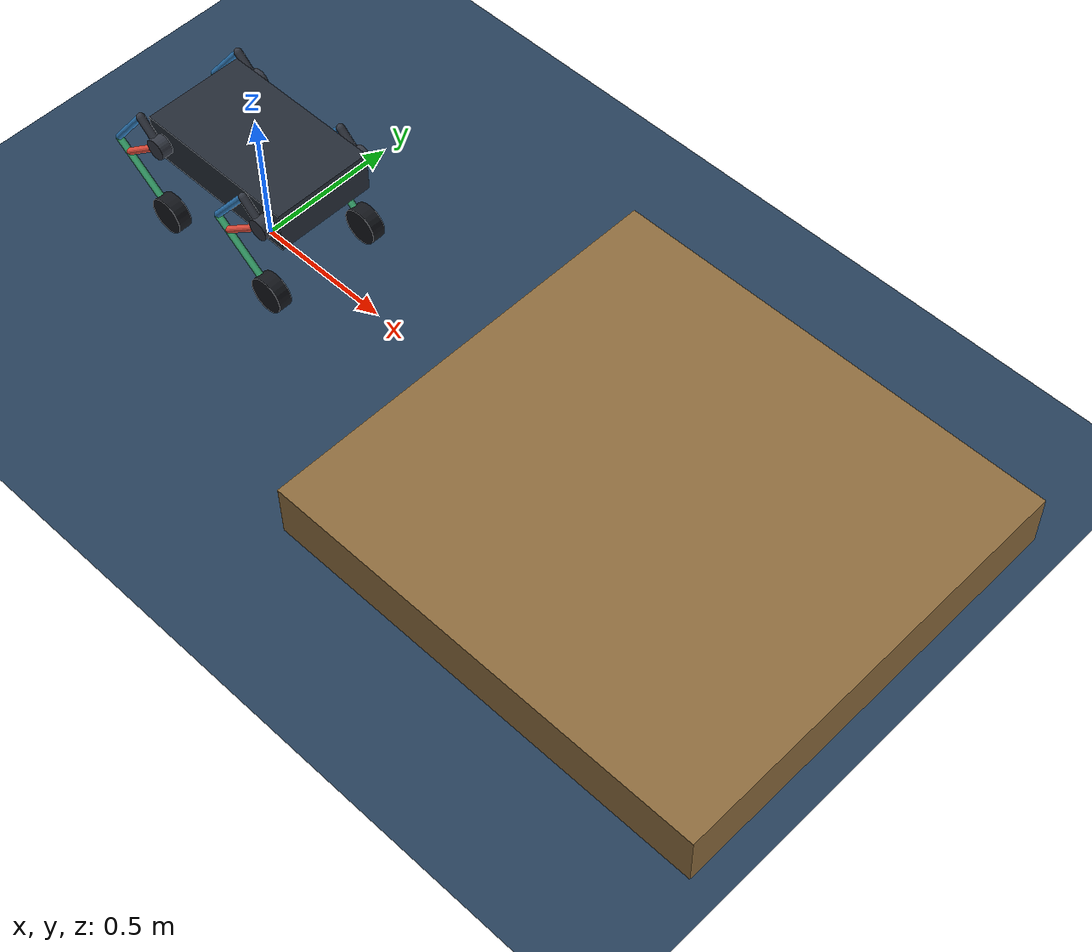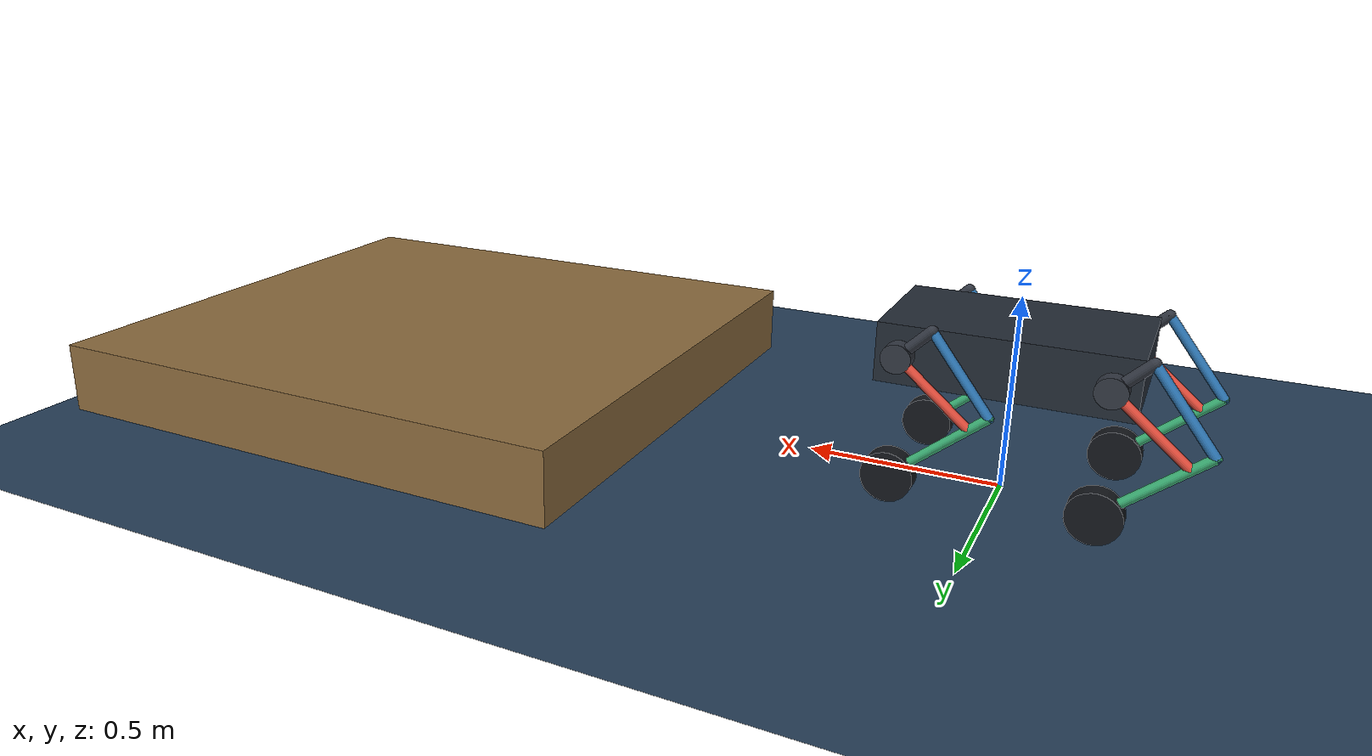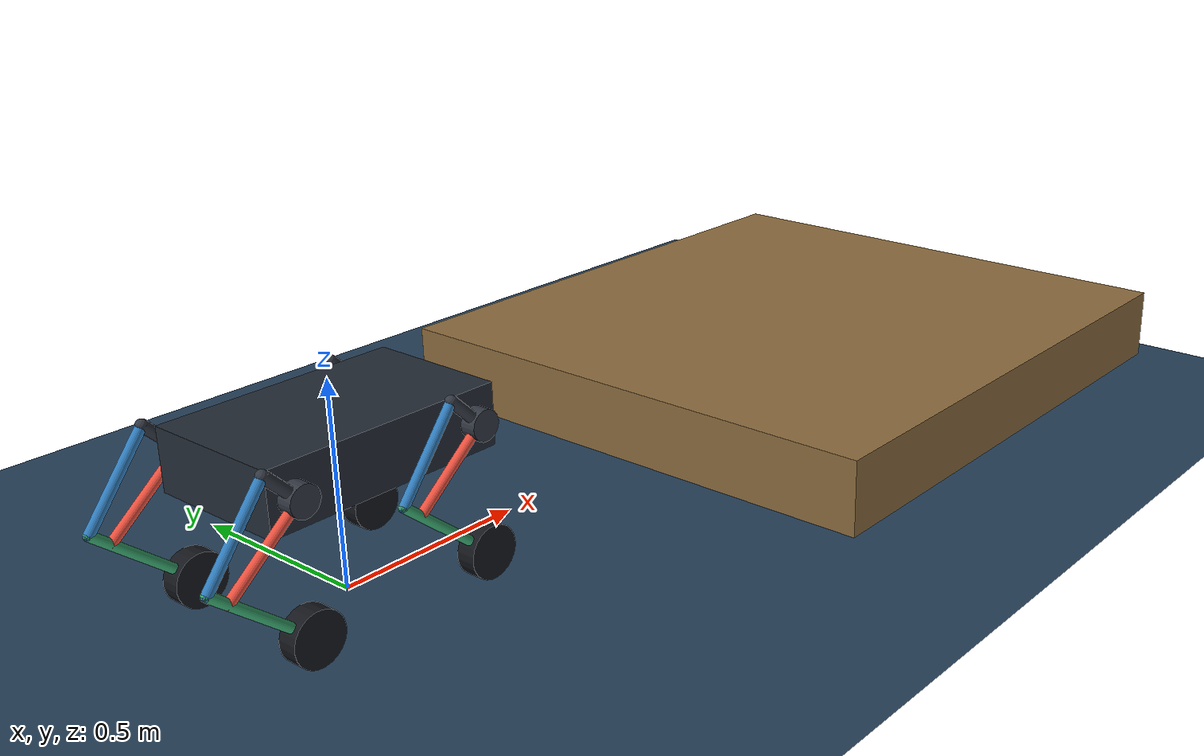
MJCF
<mujoco model="ascento_dog_step">
  <compiler angle="radian" inertiafromgeom="true" balanceinertia="true"/>
  <option timestep="0.001" gravity="0 0 -9.81" integrator="implicitfast"
          iterations="100" tolerance="1e-10"/>
  <statistic center="0.7 0 0.35" extent="1.2"/>

  <visual>
    <global azimuth="135" elevation="-20"/>
    <scale jointlength="0.035" jointwidth="0.008"/>
  </visual>

  <default>
    <joint axis="0 -1 0" damping="0.05" armature="0.001"/>
    <geom type="capsule" size="0.012" density="550" contype="0" conaffinity="0"/>
    <site type="sphere" size="0.008" group="2"/>
  </default>

  <asset>
    <texture name="floor_tex" type="2d" builtin="checker" mark="edge"
             width="512" height="512" rgb1="0.20 0.30 0.40"
             rgb2="0.10 0.20 0.30" markrgb="0.80 0.80 0.80"/>
    <material name="floor_mat" texture="floor_tex" texrepeat="4 4"
              texuniform="true" reflectance="0.15"/>
    <material name="chassis_mat" rgba="0.14 0.17 0.21 1"/>
    <material name="frame_mat" rgba="0.20 0.22 0.26 1"/>
    <material name="driver_mat" rgba="0.91 0.31 0.24 1"/>
    <material name="upper_mat" rgba="0.19 0.49 0.74 1"/>
    <material name="lower_mat" rgba="0.23 0.68 0.45 1"/>
    <material name="wheel_mat" rgba="0.08 0.09 0.11 1"/>
    <material name="step_mat" rgba="0.55 0.42 0.24 1"/>
  </asset>

  <worldbody>
    <light name="key" pos="0 -1.5 1.8" dir="0 0.6 -1"/>
    <!--
      台阶：顶面高 200 mm，立面前缘位于 x = 0.9 m，向 +x 延伸到 x = 2.5 m。
      contype/conaffinity 与地面一致，摩擦同车轮滚动摩擦约定。
    -->
    <geom name="step" type="box" pos="1.7 0 0.10" size="0.8 0.75 0.10"
          material="step_mat" contype="1" conaffinity="1"
          friction="1.5 0.01 0.001"/>
    <camera name="overview" pos="0.6 -2.0 1.0"
            xyaxes="0.9889 -0.1483 0 0.0516 0.3439 0.9376"/>
    <camera name="step_side" pos="0.9 1.8 0.8"
            xyaxes="-1 0 0 0 -0.2922 0.9564"/>
    <geom name="floor" type="plane" pos="0 0 0" size="2.6 1.5 0.05"
          material="floor_mat" contype="1" conaffinity="1"/>

    <!--
      Illustrative chassis: 0.60 x 0.36 x 0.15 m.
      Reference height makes the four nominal-pose wheels tangent to z=0.
    -->
    <body name="chassis" pos="0 0 0.3693091272">
      <freejoint name="floating_base"/>
      <geom name="chassis_box" type="box" size="0.30 0.18 0.075"
            material="chassis_mat"/>
      <site name="imu_site" pos="0 0 0.02" size="0.004" rgba="1 0.8 0 0.5"/>

      <!-- Front-left leg: local analytical +x points toward chassis -x
           (knee bends rearward, toward the travel-opposite side). -->
      <body name="front_left_mount" pos="0.24 0.20 0" quat="0 0 0 1">
        <geom name="front_left_frame_AB" fromto="0 0 0 0.0769968574 0 0.0769968574"
              size="0.014" material="frame_mat"/>
        <geom name="front_left_hip_housing" type="cylinder" pos="0 0 0"
              size="0.037 0.020" quat="0.7071067812 0.7071067812 0 0"
              material="frame_mat"/>
        <site name="front_left_point_A" pos="0 0 0" rgba="1 0.3 0.2 1"/>
        <site name="front_left_point_B" pos="0.0769968574 0 0.0769968574"
              rgba="1 0.8 0.1 1"/>
        <body name="front_left_driver_AD" quat="0.9396926208 0 0.3420201433 0">
          <joint name="front_left_hip_drive" range="-0.4363323130 0.4363323130"/>
          <geom name="front_left_link_AD" fromto="0 0 0 0.238 0 0"
                material="driver_mat"/>
          <site name="front_left_point_D" pos="0.238 0 0" rgba="1 0.3 0.2 1"/>
          <body name="front_left_lower_DCE" pos="0.238 0 0"
                quat="0.7655608359 0 -0.6433635104 0">
            <joint name="front_left_inner_passive" range="-1.2 1.2"/>
            <geom name="front_left_link_DCE" fromto="-0.235 0 0 0.057 0 0"
                  material="lower_mat"/>
            <site name="front_left_point_C_lower" pos="0.057 0 0"
                  rgba="0.9 0.2 0.9 1"/>
            <site name="front_left_point_C" pos="0.057 0 0" rgba="0.9 0.2 0.9 0"/>
            <site name="front_left_point_E" pos="-0.235 0 0" rgba="0.2 1 0.4 1"/>
            <body name="front_left_wheel" pos="-0.235 0 0">
              <joint name="front_left_wheel_spin" axis="0 -1 0" damping="0.01"/>
              <geom name="front_left_wheel_geom" type="cylinder" size="0.065 0.025"
                    quat="0.7071067812 0.7071067812 0 0" material="wheel_mat"
                    contype="1" conaffinity="1" friction="1.0 0.01 0.001"/>
            </body>
          </body>
        </body>
        <body name="front_left_upper_BC" pos="0.0769968574 0 0.0769968574"
              quat="0.8973219461 0 0.4413766249 0">
          <joint name="front_left_pin_passive" range="-1.2 1.2"/>
          <geom name="front_left_link_BC" fromto="0 0 0 0.244 0 0"
                material="upper_mat"/>
          <site name="front_left_point_C_upper" pos="0.244 0 0"
                rgba="0.9 0.2 0.9 0.45"/>
        </body>
      </body>

      <!-- Front-right leg. -->
      <body name="front_right_mount" pos="0.24 -0.20 0" quat="0 0 0 1">
        <geom name="front_right_frame_AB" fromto="0 0 0 0.0769968574 0 0.0769968574"
              size="0.014" material="frame_mat"/>
        <geom name="front_right_hip_housing" type="cylinder" pos="0 0 0"
              size="0.037 0.020" quat="0.7071067812 0.7071067812 0 0"
              material="frame_mat"/>
        <site name="front_right_point_A" pos="0 0 0" rgba="1 0.3 0.2 1"/>
        <site name="front_right_point_B" pos="0.0769968574 0 0.0769968574"
              rgba="1 0.8 0.1 1"/>
        <body name="front_right_driver_AD" quat="0.9396926208 0 0.3420201433 0">
          <joint name="front_right_hip_drive" range="-0.4363323130 0.4363323130"/>
          <geom name="front_right_link_AD" fromto="0 0 0 0.238 0 0"
                material="driver_mat"/>
          <site name="front_right_point_D" pos="0.238 0 0" rgba="1 0.3 0.2 1"/>
          <body name="front_right_lower_DCE" pos="0.238 0 0"
                quat="0.7655608359 0 -0.6433635104 0">
            <joint name="front_right_inner_passive" range="-1.2 1.2"/>
            <geom name="front_right_link_DCE" fromto="-0.235 0 0 0.057 0 0"
                  material="lower_mat"/>
            <site name="front_right_point_C_lower" pos="0.057 0 0"
                  rgba="0.9 0.2 0.9 1"/>
            <site name="front_right_point_C" pos="0.057 0 0" rgba="0.9 0.2 0.9 0"/>
            <site name="front_right_point_E" pos="-0.235 0 0" rgba="0.2 1 0.4 1"/>
            <body name="front_right_wheel" pos="-0.235 0 0">
              <joint name="front_right_wheel_spin" axis="0 -1 0" damping="0.01"/>
              <geom name="front_right_wheel_geom" type="cylinder" size="0.065 0.025"
                    quat="0.7071067812 0.7071067812 0 0" material="wheel_mat"
                    contype="1" conaffinity="1" friction="1.0 0.01 0.001"/>
            </body>
          </body>
        </body>
        <body name="front_right_upper_BC" pos="0.0769968574 0 0.0769968574"
              quat="0.8973219461 0 0.4413766249 0">
          <joint name="front_right_pin_passive" range="-1.2 1.2"/>
          <geom name="front_right_link_BC" fromto="0 0 0 0.244 0 0"
                material="upper_mat"/>
          <site name="front_right_point_C_upper" pos="0.244 0 0"
                rgba="0.9 0.2 0.9 0.45"/>
        </body>
      </body>

      <!-- Rear-left leg: same local +x direction as both front legs. -->
      <body name="rear_left_mount" pos="-0.24 0.20 0" quat="0 0 0 1">
        <geom name="rear_left_frame_AB" fromto="0 0 0 0.0769968574 0 0.0769968574"
              size="0.014" material="frame_mat"/>
        <geom name="rear_left_hip_housing" type="cylinder" pos="0 0 0"
              size="0.037 0.020" quat="0.7071067812 0.7071067812 0 0"
              material="frame_mat"/>
        <site name="rear_left_point_A" pos="0 0 0" rgba="1 0.3 0.2 1"/>
        <site name="rear_left_point_B" pos="0.0769968574 0 0.0769968574"
              rgba="1 0.8 0.1 1"/>
        <body name="rear_left_driver_AD" quat="0.9396926208 0 0.3420201433 0">
          <joint name="rear_left_hip_drive" range="-0.4363323130 0.4363323130"/>
          <geom name="rear_left_link_AD" fromto="0 0 0 0.238 0 0"
                material="driver_mat"/>
          <site name="rear_left_point_D" pos="0.238 0 0" rgba="1 0.3 0.2 1"/>
          <body name="rear_left_lower_DCE" pos="0.238 0 0"
                quat="0.7655608359 0 -0.6433635104 0">
            <joint name="rear_left_inner_passive" range="-1.2 1.2"/>
            <geom name="rear_left_link_DCE" fromto="-0.235 0 0 0.057 0 0"
                  material="lower_mat"/>
            <site name="rear_left_point_C_lower" pos="0.057 0 0"
                  rgba="0.9 0.2 0.9 1"/>
            <site name="rear_left_point_C" pos="0.057 0 0" rgba="0.9 0.2 0.9 0"/>
            <site name="rear_left_point_E" pos="-0.235 0 0" rgba="0.2 1 0.4 1"/>
            <body name="rear_left_wheel" pos="-0.235 0 0">
              <joint name="rear_left_wheel_spin" axis="0 -1 0" damping="0.01"/>
              <geom name="rear_left_wheel_geom" type="cylinder" size="0.065 0.025"
                    quat="0.7071067812 0.7071067812 0 0" material="wheel_mat"
                    contype="1" conaffinity="1" friction="1.0 0.01 0.001"/>
            </body>
          </body>
        </body>
        <body name="rear_left_upper_BC" pos="0.0769968574 0 0.0769968574"
              quat="0.8973219461 0 0.4413766249 0">
          <joint name="rear_left_pin_passive" range="-1.2 1.2"/>
          <geom name="rear_left_link_BC" fromto="0 0 0 0.244 0 0"
                material="upper_mat"/>
          <site name="rear_left_point_C_upper" pos="0.244 0 0"
                rgba="0.9 0.2 0.9 0.45"/>
        </body>
      </body>

      <!-- Rear-right leg. -->
      <body name="rear_right_mount" pos="-0.24 -0.20 0" quat="0 0 0 1">
        <geom name="rear_right_frame_AB" fromto="0 0 0 0.0769968574 0 0.0769968574"
              size="0.014" material="frame_mat"/>
        <geom name="rear_right_hip_housing" type="cylinder" pos="0 0 0"
              size="0.037 0.020" quat="0.7071067812 0.7071067812 0 0"
              material="frame_mat"/>
        <site name="rear_right_point_A" pos="0 0 0" rgba="1 0.3 0.2 1"/>
        <site name="rear_right_point_B" pos="0.0769968574 0 0.0769968574"
              rgba="1 0.8 0.1 1"/>
        <body name="rear_right_driver_AD" quat="0.9396926208 0 0.3420201433 0">
          <joint name="rear_right_hip_drive" range="-0.4363323130 0.4363323130"/>
          <geom name="rear_right_link_AD" fromto="0 0 0 0.238 0 0"
                material="driver_mat"/>
          <site name="rear_right_point_D" pos="0.238 0 0" rgba="1 0.3 0.2 1"/>
          <body name="rear_right_lower_DCE" pos="0.238 0 0"
                quat="0.7655608359 0 -0.6433635104 0">
            <joint name="rear_right_inner_passive" range="-1.2 1.2"/>
            <geom name="rear_right_link_DCE" fromto="-0.235 0 0 0.057 0 0"
                  material="lower_mat"/>
            <site name="rear_right_point_C_lower" pos="0.057 0 0"
                  rgba="0.9 0.2 0.9 1"/>
            <site name="rear_right_point_C" pos="0.057 0 0" rgba="0.9 0.2 0.9 0"/>
            <site name="rear_right_point_E" pos="-0.235 0 0" rgba="0.2 1 0.4 1"/>
            <body name="rear_right_wheel" pos="-0.235 0 0">
              <joint name="rear_right_wheel_spin" axis="0 -1 0" damping="0.01"/>
              <geom name="rear_right_wheel_geom" type="cylinder" size="0.065 0.025"
                    quat="0.7071067812 0.7071067812 0 0" material="wheel_mat"
                    contype="1" conaffinity="1" friction="1.0 0.01 0.001"/>
            </body>
          </body>
        </body>
        <body name="rear_right_upper_BC" pos="0.0769968574 0 0.0769968574"
              quat="0.8973219461 0 0.4413766249 0">
          <joint name="rear_right_pin_passive" range="-1.2 1.2"/>
          <geom name="rear_right_link_BC" fromto="0 0 0 0.244 0 0"
                material="upper_mat"/>
          <site name="rear_right_point_C_upper" pos="0.244 0 0"
                rgba="0.9 0.2 0.9 0.45"/>
        </body>
      </body>
    </body>
  </worldbody>

  <equality>
    <connect name="front_left_closure" site1="front_left_point_C_lower"
             site2="front_left_point_C_upper" solref="0.002 1"
             solimp="0.95 0.99 0.001"/>
    <connect name="front_right_closure" site1="front_right_point_C_lower"
             site2="front_right_point_C_upper" solref="0.002 1"
             solimp="0.95 0.99 0.001"/>
    <connect name="rear_left_closure" site1="rear_left_point_C_lower"
             site2="rear_left_point_C_upper" solref="0.002 1"
             solimp="0.95 0.99 0.001"/>
    <connect name="rear_right_closure" site1="rear_right_point_C_lower"
             site2="rear_right_point_C_upper" solref="0.002 1"
             solimp="0.95 0.99 0.001"/>
  </equality>

  <actuator>
    <!-- Torque limits remain illustrative until actuator identification. -->
    <motor name="front_left_hip_motor" joint="front_left_hip_drive"
           ctrlrange="-40 40" ctrllimited="true"/>
    <motor name="front_right_hip_motor" joint="front_right_hip_drive"
           ctrlrange="-40 40" ctrllimited="true"/>
    <motor name="rear_left_hip_motor" joint="rear_left_hip_drive"
           ctrlrange="-40 40" ctrllimited="true"/>
    <motor name="rear_right_hip_motor" joint="rear_right_hip_drive"
           ctrlrange="-40 40" ctrllimited="true"/>
    <motor name="front_left_wheel_motor" joint="front_left_wheel_spin"/>
    <motor name="front_right_wheel_motor" joint="front_right_wheel_spin"/>
    <motor name="rear_left_wheel_motor" joint="rear_left_wheel_spin"/>
    <motor name="rear_right_wheel_motor" joint="rear_right_wheel_spin"/>
  </actuator>

  <sensor>
    <framequat name="imu_quat" objtype="body" objname="chassis"/>
    <gyro name="imu_gyro" site="imu_site"/>
    <framelinacc name="imu_accel" objtype="site" objname="imu_site"/>
  </sensor>
</mujoco>
